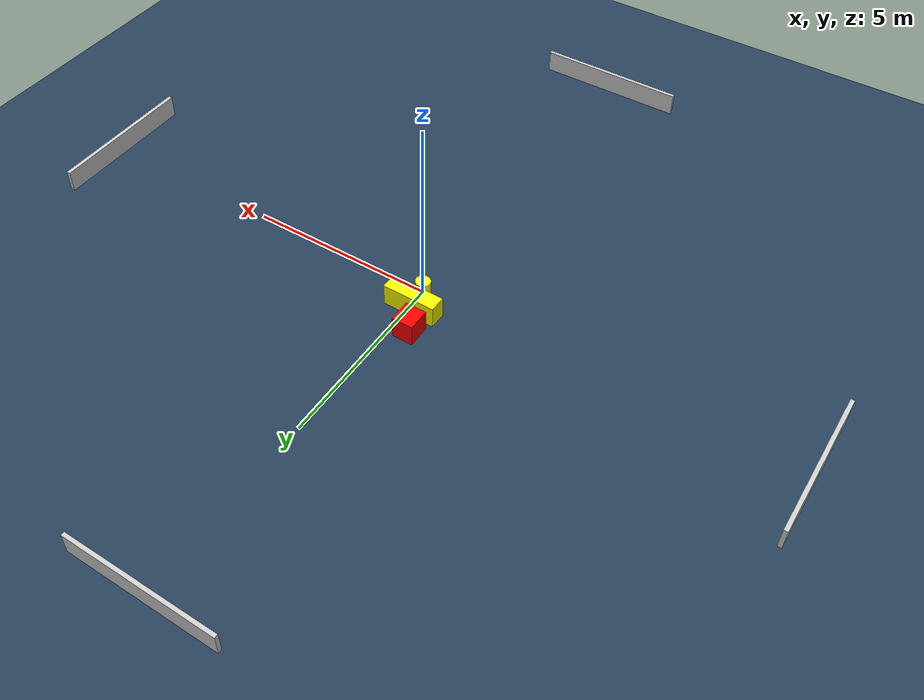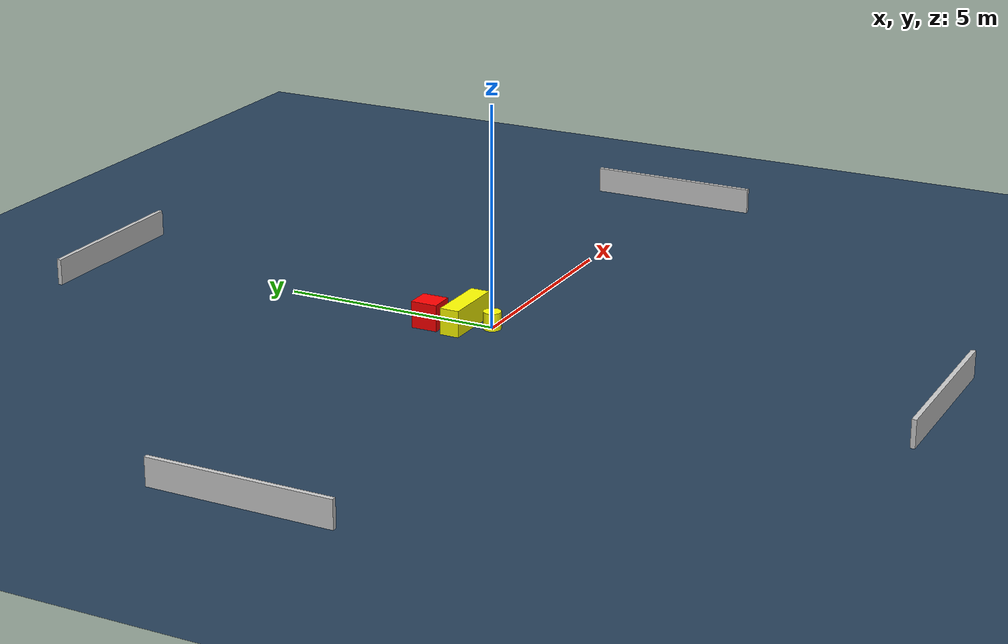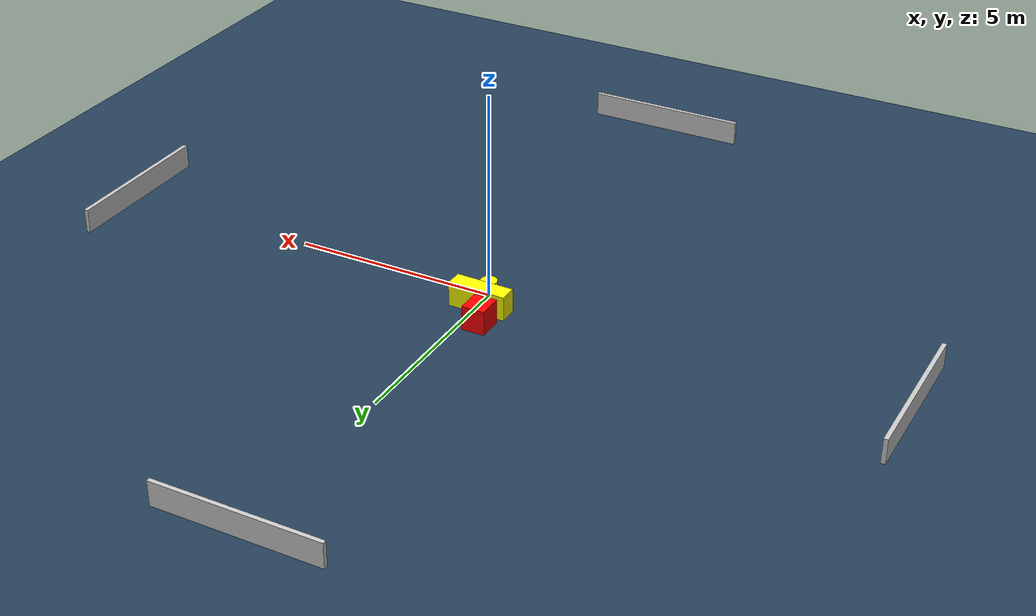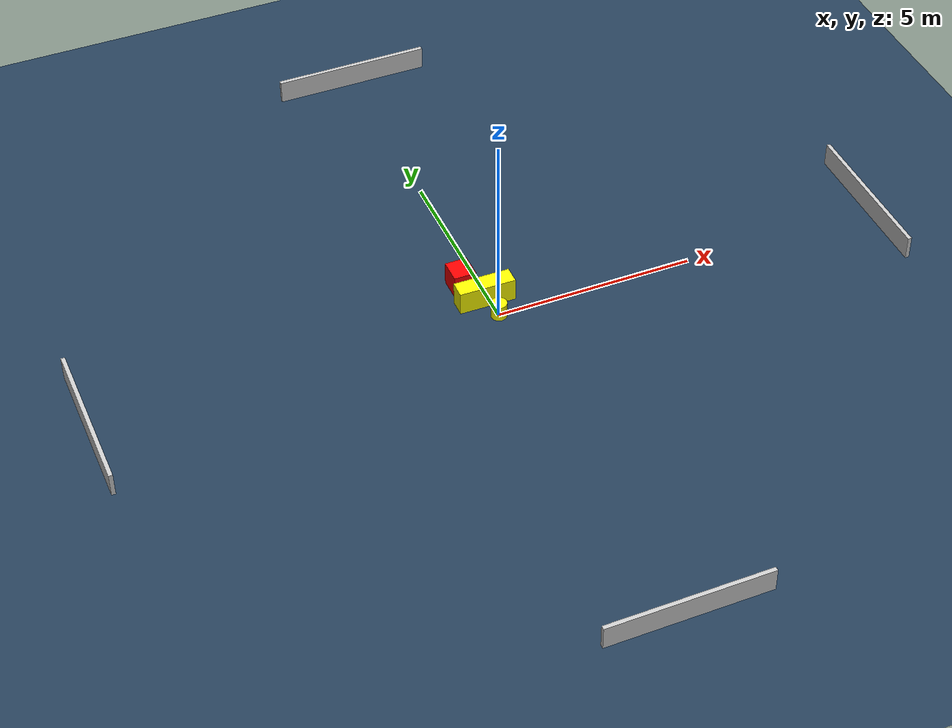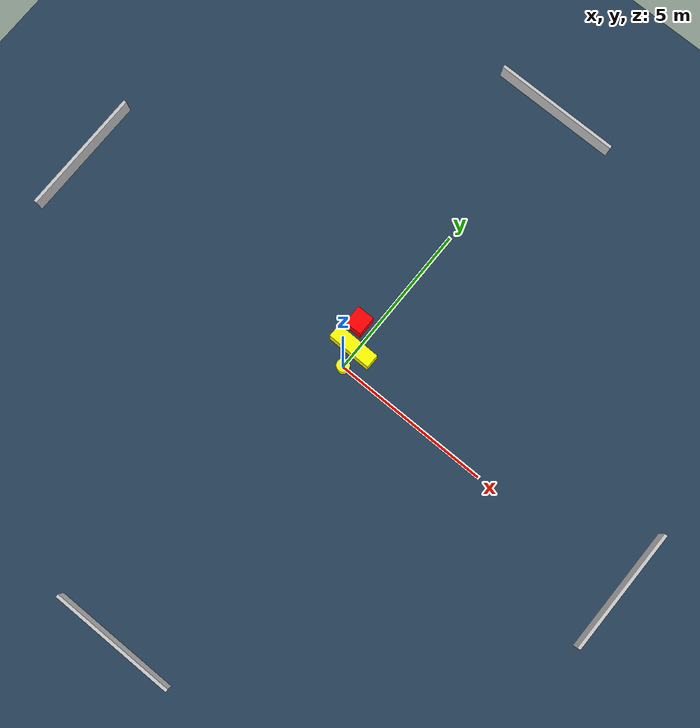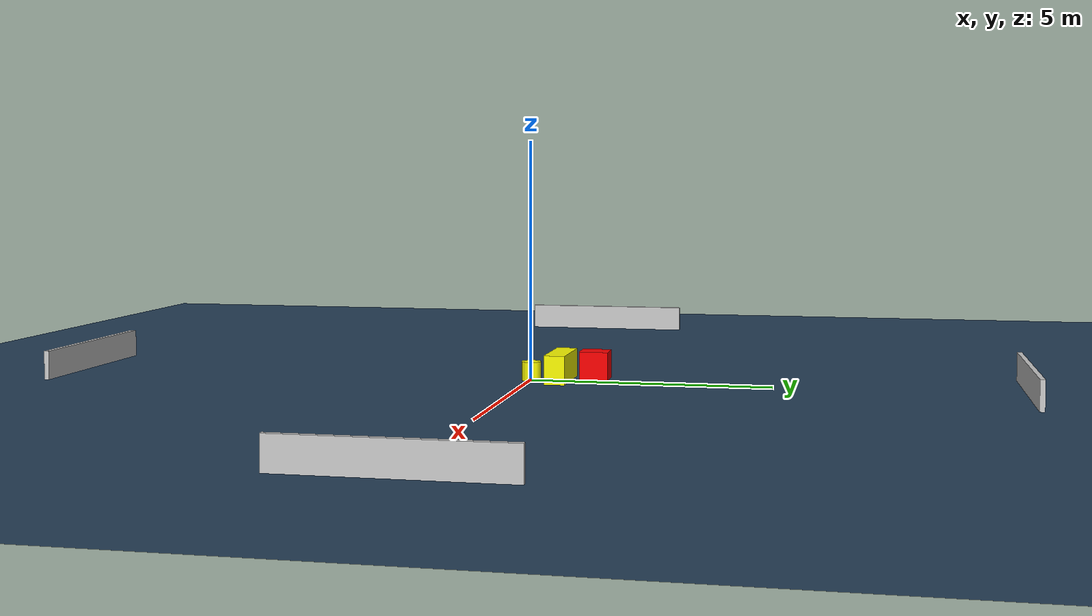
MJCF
<?xml version="1.0" ?>
<mujoco model="generated_environment">
  <option timestep="0.01" integrator="RK4" cone="elliptic"/>
  <default>
    <geom density="1"/>
  </default>
  <asset>
    <texture builtin="gradient" height="3072" name="skybox" rgb1="0.3 0.5 0.7" rgb2="0 0 0" type="skybox" width="512"/>
    <texture builtin="checker" height="300" name="groundplane" rgb1="0.2 0.3 0.4" rgb2="0.1 0.2 0.3" type="2d" width="300"/>
    <material name="groundplane" reflectance="0.2" texrepeat="5 5" texture="groundplane"/>
  </asset>
  <worldbody>
    <light dir="0 0 -1" directional="true" pos="0 0 1.5"/>
    <geom condim="3" friction="0.5 0.005 0.001" material="groundplane" name="floor" pos="0 0 0" size="0 0 0.05" type="plane"/>
    <body name="walls">
      <geom name="wall_1" condim="4" pos="-10.0 0.0 0.3" rgba="0.800000011920929 0.800000011920929 0.800000011920929 1.0" size="0.05 2.0 0.3" type="box"/>
      <geom name="wall_2" condim="4" pos="10.0 0.0 0.3" rgba="0.800000011920929 0.800000011920929 0.800000011920929 1.0" size="0.05 2.0 0.3" type="box"/>
      <geom name="wall_3" condim="4" pos="0.0 -10.0 0.3" rgba="0.800000011920929 0.800000011920929 0.800000011920929 1.0" size="2.0 0.05 0.3" type="box"/>
      <geom name="wall_4" condim="4" pos="0.0 10.0 0.3" rgba="0.800000011920929 0.800000011920929 0.800000011920929 1.0" size="2.0 0.05 0.3" type="box"/>
    </body>
    <body name="robot">
      <joint name="joint_x" type="slide" pos="0 0 0" axis="1 0 0"/>
      <joint name="joint_y" type="slide" pos="0 0 0" axis="0 1 0"/>
      <geom name="robot" type="cylinder" pos="0.0 0.0 0.2" size="0.2 0.2 0.0" mass="5.0" friction="1.0 0.005 0.0001" condim="4" rgba="1.0 1.0 0.0 1.0"/>
    </body>
    <body name="obstacle_1_movable">
      <geom name="obstacle_1_movable" condim="4" pos="-0.11116005547952466 0.6070039533767921 0.3" euler="0 0 359.201600845366" friction="0.0 0.005 0.001" rgba="1.0 1.0 0.0 1.0" size="0.7069918945455 0.21840821766448654 0.3" type="box" mass="0.1"/>
      <joint type="free"/>
    </body>
    <body name="obstacle_2_static">
      <geom name="obstacle_2_static" condim="4" pos="-0.44961402159523334 1.2842409520688811 0.3" euler="0 0 0.28796420456591143" friction="0.0 0.005 0.001" rgba="1.0 0.0 0.0 1.0" size="0.2787782888652293 0.3015833055581344 0.3" type="box"/>
    </body>
  </worldbody>
  <actuator>
    <motor name="actuator_x" joint="joint_x" gear="1" ctrlrange="-1 1"/>
    <motor name="actuator_y" joint="joint_y" gear="1" ctrlrange="-1 1"/>
  </actuator>
</mujoco>
